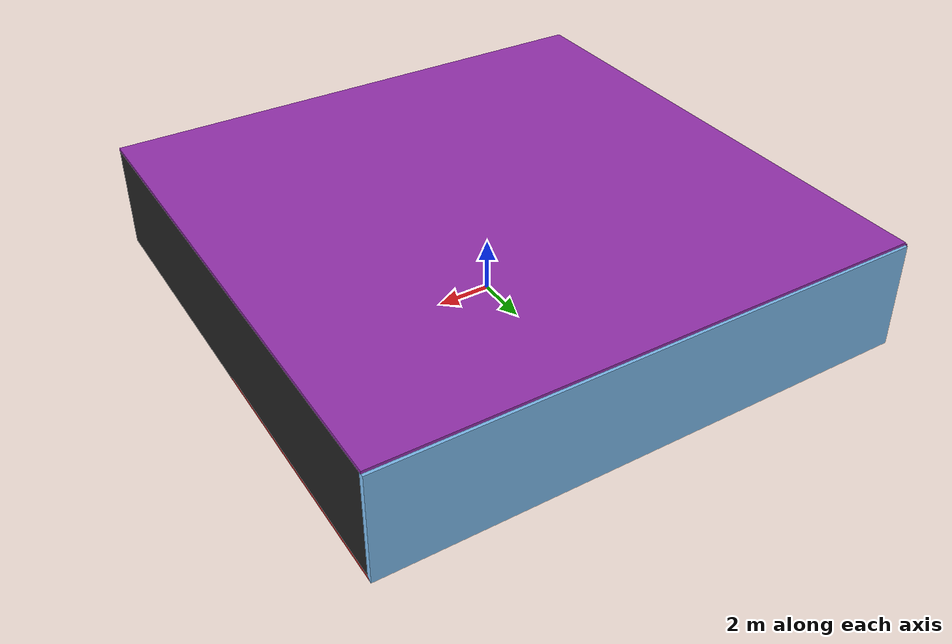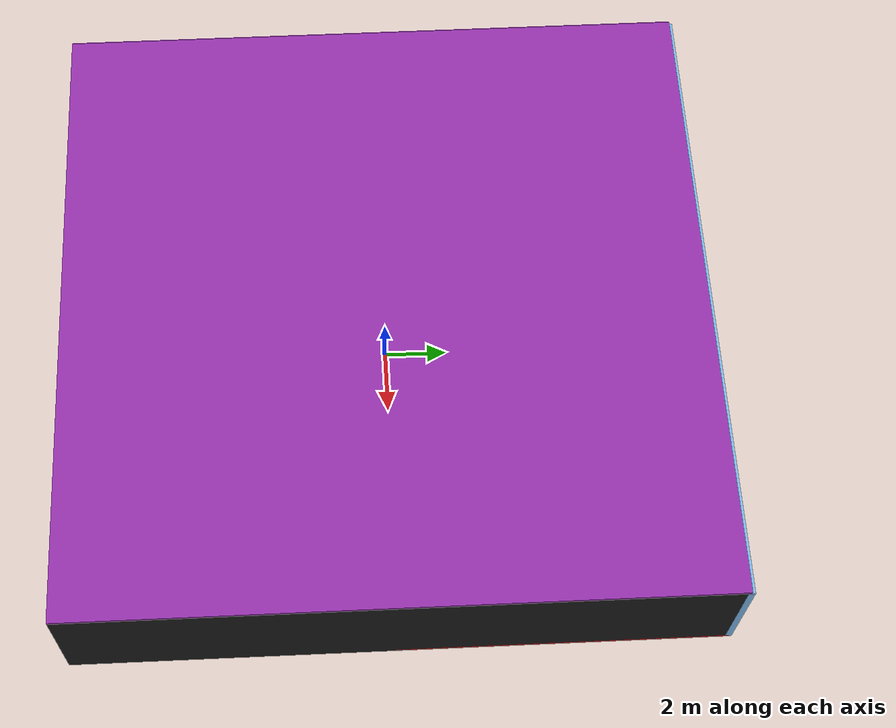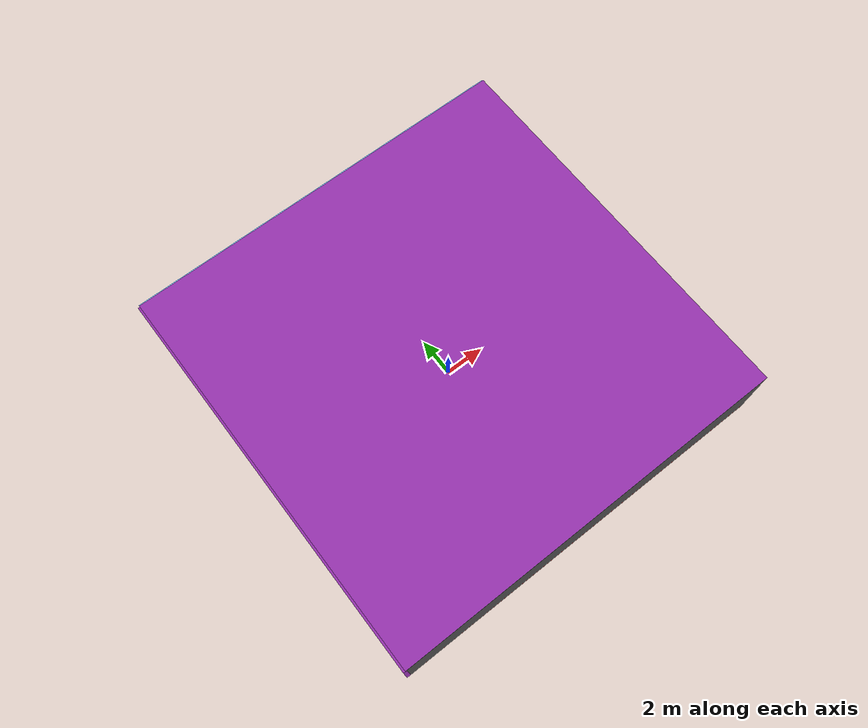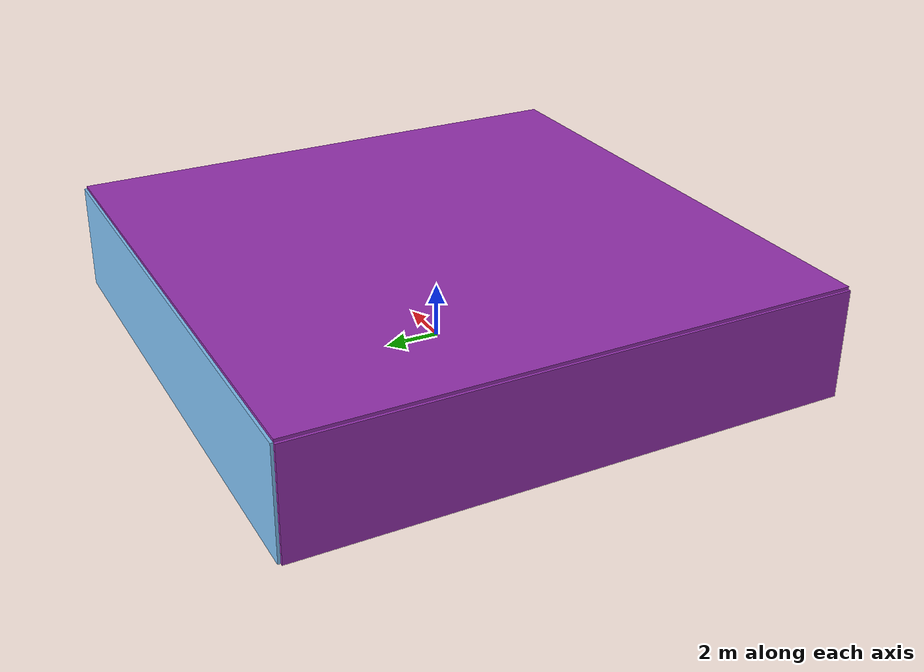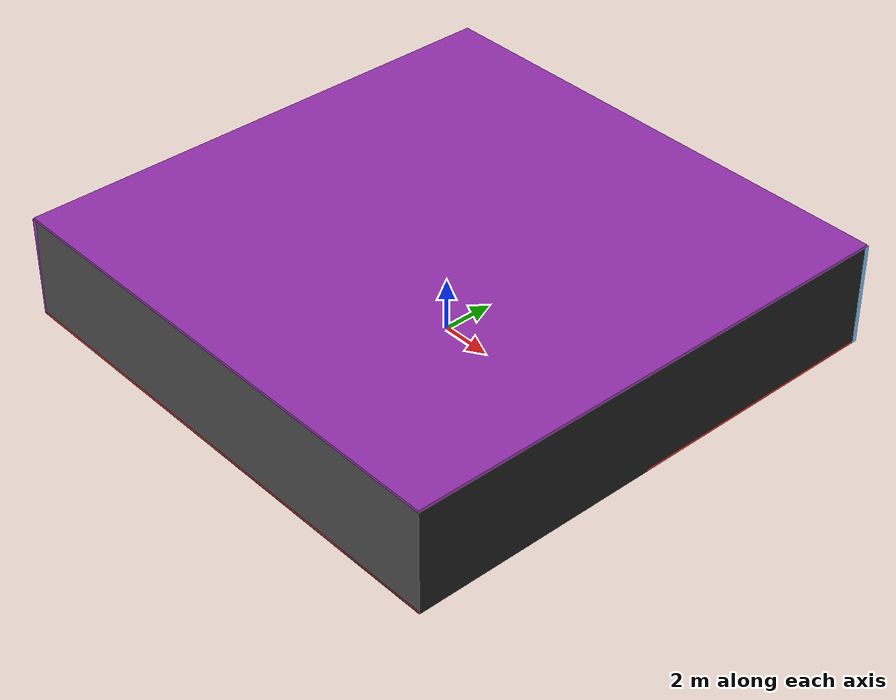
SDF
<sdf version="1.4">
 <world name="default">
  <physics type="ode">
   <max_step_size>0.001</max_step_size>
   <real_time_factor>1</real_time_factor>
   <real_time_update_rate>1000</real_time_update_rate>
   <gravity>0 0 -9.8</gravity>
  </physics>
  <scene><ambient>0.4 0.4 0.4 1</ambient><background>0.7 0.7 0.7 1</background><shadows>1</shadows></scene>
  <model name="Surrounding">
   <static>1</static>
   <link name="Ceiling">
    <collision name="Ceiling_Collision"><geometry><box><size>20 20 0.1</size></box></geometry></collision>
    <visual name="Ceiling_Visual">
     <geometry><box><size>20 20 0.1</size></box></geometry>
     <material>
      <script><uri>file://media/materials/scripts/gazebo.material</uri><name>Gazebo/Purple</name></script>
     </material>
    </visual>
    <pose>0 0 4.05 0 0 0</pose>
   </link>
   <link name="Wall_South">
    <collision name="Wall_South_Collision">
     <geometry><box><size>20 0 4</size></box></geometry>
     <pose>0 0 2 0 -0 0</pose>
    </collision>
    <visual name="Wall_South_Visual">
     <pose>0 0 2 0 -0 0</pose>
     <geometry><box><size>20 0 4</size></box></geometry>
     <material>
      <script><uri>file://media/materials/scripts/gazebo.material</uri><name>Gazebo/DarkGrey</name></script>
     </material>
    </visual>
    <velocity_decay><linear>0</linear><angular>0</angular></velocity_decay>
    <pose>0 -10 0 0 -0 0</pose>
   </link>
   <link name="Wall_East">
    <collision name="Wall_21_Collision">
     <geometry><box><size>20 0 4</size></box></geometry>
     <pose>0 0 2 0 -0 0</pose>
    </collision>
    <visual name="Wall_21_Visual">
     <pose>0 0 2 0 -0 0</pose>
     <geometry><box><size>20 0 4</size></box></geometry>
     <material>
      <script><uri>file://media/materials/scripts/gazebo.material</uri><name>Gazebo/Black</name></script>
     </material>
    </visual>
    <velocity_decay><linear>0</linear><angular>0</angular></velocity_decay>
    <pose>10 0 0 0 -0 1.5708</pose>
   </link>
   <link name="Wall_North">
    <collision name="Wall_22_Collision">
     <geometry><box><size>20 0.2 4</size></box></geometry>
     <pose>0 0 2 0 -0 0</pose>
    </collision>
    <visual name="Wall_22_Visual">
     <pose>0 0 2 0 -0 0</pose>
     <geometry><box><size>20 0.2 4</size></box></geometry>
     <material>
      <script><uri>file://media/materials/scripts/gazebo.material</uri><name>Gazebo/SkyBlue</name></script>
     </material>
    </visual>
    <velocity_decay><linear>0</linear><angular>0</angular></velocity_decay>
    <pose>0 10 0 0 -0 0</pose>
   </link>
   <link name="Wall_West">
    <collision name="Wall_23_Collision">
     <geometry><box><size>20 0.2 4</size></box></geometry>
     <pose>0 0 2 0 -0 0</pose>
    </collision>
    <visual name="Wall_23_Visual">
     <pose>0 0 2 0 -0 0</pose>
     <geometry><box><size>20 0.2 4</size></box></geometry>
     <material>
      <script><uri>file://media/materials/scripts/gazebo.material</uri><name>Gazebo/Purple</name></script>
     </material>
    </visual>
    <velocity_decay><linear>0</linear><angular>0</angular></velocity_decay>
    <pose>-10 0 0 0 0 -1.5708</pose>
   </link>
   <link name="Ground_link">
    <collision name="collision">
     <pose>0 0 .05 0 -0 0</pose>
     <geometry><box><size>20 20 0.1</size></box></geometry>
    </collision>
    <visual name="visual">
     <pose>0 0 .05 0 -0 0</pose>
     <geometry><box><size>20 20 0.1</size></box></geometry>
     <material>
      <script><uri>file://media/materials/scripts/gazebo.material</uri><name>Gazebo/RedGlow</name></script>
     </material>
    </visual>
   </link>
   <static>1</static>
  </model>
  <spherical_coordinates>
   <surface_model>EARTH_WGS84</surface_model>
   <latitude_deg>0</latitude_deg>
   <longitude_deg>0</longitude_deg>
   <elevation>0</elevation>
   <heading_deg>0</heading_deg>
  </spherical_coordinates>
  <light name="lightball_0" type="diffuse">
   <diffuse>0.8 0.8 0.8 1</diffuse>
   <specular>0.2 0.2 0.2 1</specular>
   <attenuation>
    <range>100</range>
    <constant>0.7</constant>
    <linear>0.01</linear>
    <quadratic>0.001</quadratic>
   </attenuation>
   <direction>-0.5 0.1 -0.9</direction>
   <pose>-3.6168230828 5.59605259369 0.850948698784 0 0 0</pose>
  </light>
  <light name="lightball_1" type="diffuse">
   <diffuse>0.8 0.8 0.8 1</diffuse>
   <specular>0.2 0.2 0.2 1</specular>
   <attenuation>
    <range>100</range>
    <constant>0.7</constant>
    <linear>0.01</linear>
    <quadratic>0.001</quadratic>
   </attenuation>
   <direction>-0.5 0.1 -0.9</direction>
   <pose>8.14608541727 9.37235512579 1.24620060569 0 0 0</pose>
  </light>
  <light name="lightball_2" type="diffuse">
   <diffuse>0.8 0.8 0.8 1</diffuse>
   <specular>0.2 0.2 0.2 1</specular>
   <attenuation>
    <range>100</range>
    <constant>0.7</constant>
    <linear>0.01</linear>
    <quadratic>0.001</quadratic>
   </attenuation>
   <direction>-0.5 0.1 -0.9</direction>
   <pose>-1.3723128633 2.56063360392 2.67011088493 0 0 0</pose>
  </light>
  <light name="lightball_3" type="diffuse">
   <diffuse>0.8 0.8 0.8 1</diffuse>
   <specular>0.2 0.2 0.2 1</specular>
   <attenuation>
    <range>100</range>
    <constant>0.7</constant>
    <linear>0.01</linear>
    <quadratic>0.001</quadratic>
   </attenuation>
   <direction>-0.5 0.1 -0.9</direction>
   <pose>5.4554279651 -9.37228942439 1.32973131963 0 0 0</pose>
  </light>
  <light name="lightball_4" type="diffuse">
   <diffuse>0.8 0.8 0.8 1</diffuse>
   <specular>0.2 0.2 0.2 1</specular>
   <attenuation>
    <range>100</range>
    <constant>0.7</constant>
    <linear>0.01</linear>
    <quadratic>0.001</quadratic>
   </attenuation>
   <direction>-0.5 0.1 -0.9</direction>
   <pose>-2.22581880007 5.27288940623 2.8142062787 0 0 0</pose>
  </light>
  <light name="lightball_5" type="diffuse">
   <diffuse>0.8 0.8 0.8 1</diffuse>
   <specular>0.2 0.2 0.2 1</specular>
   <attenuation>
    <range>100</range>
    <constant>0.7</constant>
    <linear>0.01</linear>
    <quadratic>0.001</quadratic>
   </attenuation>
   <direction>-0.5 0.1 -0.9</direction>
   <pose>-2.17481096191 6.36557289389 0.539932495542 0 0 0</pose>
  </light>
  <light name="lightball_6" type="diffuse">
   <diffuse>0.8 0.8 0.8 1</diffuse>
   <specular>0.2 0.2 0.2 1</specular>
   <attenuation>
    <range>100</range>
    <constant>0.7</constant>
    <linear>0.01</linear>
    <quadratic>0.001</quadratic>
   </attenuation>
   <direction>-0.5 0.1 -0.9</direction>
   <pose>0.660976347821 -4.59802245548 1.41451597545 0 0 0</pose>
  </light>
  <light name="lightball_7" type="diffuse">
   <diffuse>0.8 0.8 0.8 1</diffuse>
   <specular>0.2 0.2 0.2 1</specular>
   <attenuation>
    <range>100</range>
    <constant>0.7</constant>
    <linear>0.01</linear>
    <quadratic>0.001</quadratic>
   </attenuation>
   <direction>-0.5 0.1 -0.9</direction>
   <pose>-8.24990528917 2.72529210843 0.857014238208 0 0 0</pose>
  </light>
  <light name="lightball_8" type="diffuse">
   <diffuse>0.8 0.8 0.8 1</diffuse>
   <specular>0.2 0.2 0.2 1</specular>
   <attenuation>
    <range>100</range>
    <constant>0.7</constant>
    <linear>0.01</linear>
    <quadratic>0.001</quadratic>
   </attenuation>
   <direction>-0.5 0.1 -0.9</direction>
   <pose>-4.48887754521 -0.124537392738 3.59548582996 0 0 0</pose>
  </light>
  <include>
   <uri>model://textured_shapes</uri>
   <pose>-7.7796532748 2.46822154114 0 0 0 2.46177640502</pose>
  </include>
  <include>
   <uri>model://robocup_3Dsim_goal</uri>
   <pose>-2.31520309142 -2.1714108913 0 0 0 0.927509460235</pose>
  </include>
  <include>
   <uri>model://construction_cone</uri>
   <pose>2.2386953299 3.64308050815 0 0 0 0.911246487099</pose>
  </include>
  <include><uri>model://cabinet</uri><pose>7.21304046036 -0.445862434796 0 0 0 1.50820817303</pose></include>
 </world>
</sdf>

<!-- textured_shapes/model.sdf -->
<sdf version="1.6">
  <model name="textured_shapes">
    <pose>0 0 0.5 0 0 0</pose>
    <link name="box">
      <pose>0 -1.5 0 0 0 0</pose>
      <collision name="collision">
        <geometry>
          <box>
            <size>1 1 1</size>
          </box>
        </geometry>
      </collision>
      <visual name="visual">
        <geometry>
          <box>
            <size>1 1 1</size>
          </box>
        </geometry>
        <material>
          <script>
            <uri>model://../model_source/models/textured_shapes/materials/scripts</uri>
            <uri>model://../model_source/models/textured_shapes/materials/textures</uri>
            <name>TexturedShape/Squares</name>
          </script>
        </material>
      </visual>
    </link>
    <link name="sphere">
      <collision name="collision">
        <geometry>
          <sphere>
            <radius>0.5</radius>
          </sphere>
        </geometry>
      </collision>
      <visual name="visual">
        <geometry>
          <sphere>
            <radius>0.5</radius>
          </sphere>
        </geometry>
        <material>
          <script>
            <uri>model://../model_source/models/textured_shapes/materials/scripts</uri>
            <uri>model://../model_source/models/textured_shapes/materials/textures</uri>
            <name>TexturedShape/Squares</name>
          </script>
        </material>
      </visual>
    </link>
    <link name="cylinder">
      <pose>0 1.5 0 0 0 0</pose>
      <collision name="collision">
        <geometry>
          <cylinder>
            <radius>0.5</radius>
            <length>1</length>
          </cylinder>
        </geometry>
      </collision>
      <visual name="visual">
        <geometry>
          <cylinder>
            <radius>0.5</radius>
            <length>1</length>
          </cylinder>
        </geometry>
        <material>
          <script>
            <uri>model://../model_source/models/textured_shapes/materials/scripts</uri>
            <uri>model://../model_source/models/textured_shapes/materials/textures</uri>
            <name>TexturedShape/Squares</name>
          </script>
        </material>
      </visual>
    </link>
  </model>
</sdf>

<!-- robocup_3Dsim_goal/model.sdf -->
<sdf version="1.5">
  <model name="robocup_3d_goal">
    <static>true</static>
    <link name="left_post">
      <pose>0 1.05 0.45 0 0 0</pose>
      <collision name="collision">
        <geometry>
          <cylinder>
            <radius>0.05</radius>
            <length>0.9</length>
          </cylinder>
        </geometry>
      </collision>
      <visual name="visual">
        <geometry>
          <cylinder>
            <radius>0.05</radius>
            <length>0.9</length>
          </cylinder>
        </geometry>
        <material>
          <script>
            <uri>file://media/materials/scripts/gazebo.material</uri>
            <name>Gazebo/ZincYellow</name>
          </script>
        </material>
      </visual>
    </link>
    <link name="left_support_horiz_lower">
      <pose>0.30 1.05 0.01 0 0 0</pose>
      <collision name="collision">
        <geometry>
          <box>
            <size>0.50 0.02 0.02</size>
          </box>
        </geometry>
      </collision>
      <visual name="visual">
        <geometry>
          <box>
            <size>0.50 0.02 0.02</size>
          </box>
        </geometry>
        <material>
          <script>
            <uri>file://media/materials/scripts/gazebo.material</uri>
            <name>Gazebo/White</name>
          </script>
        </material>
      </visual>
    </link>
    <link name="left_support_horiz_upper">
      <pose>0.30 1.05 0.79 0 0 0</pose>
      <collision name="collision">
        <geometry>
          <box>
            <size>0.50 0.02 0.02</size>
          </box>
        </geometry>
      </collision>
      <visual name="visual">
        <geometry>
          <box>
            <size>0.50 0.02 0.02</size>
          </box>
        </geometry>
        <material>
          <script>
            <uri>file://media/materials/scripts/gazebo.material</uri>
            <name>Gazebo/White</name>
          </script>
        </material>
      </visual>
    </link>
    <link name="left_support_vertical">
      <pose>0.56 1.05 0.4 0 1.5708 0</pose>
      <collision name="collision">
        <geometry>
          <box>
            <size>0.80 0.02 0.02</size>
          </box>
        </geometry>
      </collision>
      <visual name="visual">
        <geometry>
          <box>
            <size>0.80 0.02 0.02</size>
          </box>
        </geometry>
        <material>
          <script>
            <uri>file://media/materials/scripts/gazebo.material</uri>
            <name>Gazebo/White</name>
          </script>
        </material>
      </visual>
    </link>
    <link name="right_support_horiz_lower">
      <pose>0.30 -1.05 0.01 0 0 0</pose>
      <collision name="collision">
        <geometry>
          <box>
            <size>0.50 0.02 0.02</size>
          </box>
        </geometry>
      </collision>
      <visual name="visual">
        <geometry>
          <box>
            <size>0.50 0.02 0.02</size>
          </box>
        </geometry>
        <material>
          <script>
            <uri>file://media/materials/scripts/gazebo.material</uri>
            <name>Gazebo/White</name>
          </script>
        </material>
      </visual>
    </link>
    <link name="right_support_horiz_upper">
      <pose>0.30 -1.05 0.79 0 0 0</pose>
      <collision name="collision">
        <geometry>
          <box>
            <size>0.50 0.02 0.02</size>
          </box>
        </geometry>
      </collision>
      <visual name="visual">
        <geometry>
          <box>
            <size>0.50 0.02 0.02</size>
          </box>
        </geometry>
        <material>
          <script>
            <uri>file://media/materials/scripts/gazebo.material</uri>
            <name>Gazebo/White</name>
          </script>
        </material>
      </visual>
    </link>
    <link name="right_support_vertical">
      <pose>0.56 -1.05 0.4 0 1.5708 0</pose>
      <collision name="collision">
        <geometry>
          <box>
            <size>0.80 0.02 0.02</size>
          </box>
        </geometry>
      </collision>
      <visual name="visual">
        <geometry>
          <box>
            <size>0.80 0.02 0.02</size>
          </box>
        </geometry>
        <material>
          <script>
            <uri>file://media/materials/scripts/gazebo.material</uri>
            <name>Gazebo/White</name>
          </script>
        </material>
      </visual>
    </link>
    <link name="center_support_horiz_lower">
      <pose>0.56 0 0.01 0 1.5708 0</pose>
      <collision name="collision">
        <geometry>
          <box>
            <size>0.02 2.08 0.02</size>
          </box>
        </geometry>
      </collision>
      <visual name="visual">
        <geometry>
          <box>
            <size>0.02 2.08 0.02</size>
          </box>
        </geometry>
        <material>
          <script>
            <uri>file://media/materials/scripts/gazebo.material</uri>
            <name>Gazebo/White</name>
          </script>
        </material>
      </visual>
    </link>
    <link name="center_support_horiz_upper">
      <pose>0.56 0 0.79 0 1.5708 0</pose>
      <collision name="collision">
        <geometry>
          <box>
            <size>0.02 2.08 0.02</size>
          </box>
        </geometry>
      </collision>
      <visual name="visual">
        <geometry>
          <box>
            <size>0.02 2.08 0.02</size>
          </box>
        </geometry>
        <material>
          <script>
            <uri>file://media/materials/scripts/gazebo.material</uri>
            <name>Gazebo/White</name>
          </script>
        </material>
      </visual>
    </link>
    <link name="right_post">
      <pose>0 -1.05 0.45 0 0 0</pose>
      <collision name="collision">
        <geometry>
          <cylinder>
            <radius>0.05</radius>
            <length>0.9</length>
          </cylinder>
        </geometry>
      </collision>
      <visual name="visual">
        <geometry>
          <cylinder>
            <radius>0.05</radius>
            <length>0.9</length>
          </cylinder>
        </geometry>
        <material>
          <script>
            <uri>file://media/materials/scripts/gazebo.material</uri>
            <name>Gazebo/ZincYellow</name>
          </script>
        </material>
      </visual>
    </link>
    <link name="crossbar">
      <pose>0 0 0.85 1.57 1.57 0</pose>
      <collision name="collision">
        <geometry>
          <cylinder>
            <radius>0.05</radius>
            <length>2.0</length>
          </cylinder>
        </geometry>
      </collision>
      <visual name="visual">
        <geometry>
          <cylinder>
            <radius>0.05</radius>
            <length>2.0</length>
          </cylinder>
        </geometry>
        <material>
          <script>
            <uri>file://media/materials/scripts/gazebo.material</uri>
            <name>Gazebo/ZincYellow</name>
          </script>
        </material>
      </visual>
    </link>
    <link name="center_net">
      <pose>0.56 0 0.40 0 0 0</pose>
      <collision name="collision">
        <geometry>
          <box>
            <size>0.01 2.1 0.80</size>
          </box>
        </geometry>
      </collision>
      <visual name="visual">
        <geometry>
          <box>
            <size>0.01 2.1 0.80</size>
          </box>
        </geometry>
        <material>
          <script>
            <uri>model://../model_source/models/robocup09_spl_field/materials/scripts/</uri>
            <uri>model://../model_source/models/robocup09_spl_field/materials/textures/</uri>
            <name>RoboCup/Net</name>
          </script>
        </material>
      </visual>
    </link>
    <link name="left_net">
      <pose>0.30 1.05 0.40 0 0 0</pose>
      <collision name="collision">
        <geometry>
          <box>
            <size>0.50 0.01 0.76</size>
          </box>
        </geometry>
      </collision>
      <visual name="visual">
        <geometry>
          <box>
            <size>0.50 0.01 0.76</size>
          </box>
        </geometry>
        <material>
          <script>
            <uri>model://../model_source/models/robocup09_spl_field/materials/scripts/</uri>
            <uri>model://../model_source/models/robocup09_spl_field/materials/textures/</uri>
            <name>RoboCup/Net</name>
          </script>
        </material>
      </visual>
    </link>
    <link name="right_net">
      <pose>0.30 -1.05 0.40 0 0 0</pose>
      <collision name="collision">
        <geometry>
          <box>
            <size>0.50 0.01 0.76</size>
          </box>
        </geometry>
      </collision>
      <visual name="visual">
        <geometry>
          <box>
            <size>0.50 0.01 0.76</size>
          </box>
        </geometry>
        <material>
          <script>
            <uri>model://../model_source/models/robocup09_spl_field/materials/scripts/</uri>
            <uri>model://../model_source/models/robocup09_spl_field/materials/textures/</uri>
            <name>RoboCup/Net</name>
          </script>
        </material>
      </visual>
    </link>
  </model>
</sdf>

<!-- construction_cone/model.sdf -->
<sdf version="1.5">
  <model name="Construction Cone">
    <link name="link">
      <collision name="collision">
        <geometry>
          <mesh>
            <scale>10 10 10</scale>
            <uri>file://isr-testbed/construction_cone/meshes/construction_cone.dae</uri>
          </mesh>
        </geometry>
      </collision>
      <visual name="visual">
        <geometry>
          <mesh>
            <scale>10 10 10</scale>
            <uri>file://isr-testbed/construction_cone/meshes/construction_cone.dae</uri>
          </mesh>
        </geometry>
      </visual>
    </link>
  </model>
</sdf>

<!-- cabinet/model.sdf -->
<sdf version="1.5">
  <model name="cabinet">
    <static>true</static>
    <link name="cabinet_bottom_plate">
      <inertial>
        <pose>0 0 -1 0 0 0</pose>
        <inertia>
          <ixx>2.050000</ixx>
          <ixy>0</ixy>
          <ixz>0</ixz>
          <iyy>2.050000</iyy>
          <iyz>0</iyz>
          <izz>2.050000</izz>
        </inertia>
        <mass>25.000000</mass>
      </inertial>
      <collision name="cabinet_bottom_plate_geom">
        <pose>0 0 0.010000 0 0 0</pose>
        <geometry>
          <box>
            <size>0.450000 0.450000 0.020000</size>
          </box>
        </geometry>
      </collision>
      <visual name="cabinet_bottom_plate_geom_visual">
        <pose>0 0 0.010000 0 0 0</pose>
        <geometry>
          <box>
            <size>0.450000 0.450000 0.020000</size>
          </box>
        </geometry>
        <material>
          <script>
            <uri>model://media/materials/scripts/gazebo.material</uri>
            <name>Gazebo/Wood</name>
          </script>
        </material>
      </visual>
      <collision name="cabinet_bottom_plate_geom_cabinet_back_plate">
        <pose>0.235000 0 0.510000 0 0 0</pose>
        <geometry>
          <box>
            <size>0.020000 0.450000 1.020000</size>
          </box>
        </geometry>
      </collision>
      <visual name="cabinet_bottom_plate_geom_cabinet_back_plate_visual">
        <pose>0.235000 0 0.510000 0 0 0</pose>
        <geometry>
          <box>
            <size>0.020000 0.450000 1.020000</size>
          </box>
        </geometry>
        <material>
          <script>
            <uri>model://media/materials/scripts/gazebo.material</uri>
            <name>Gazebo/Wood</name>
          </script>
        </material>
      </visual>
      <collision name="cabinet_bottom_plate_geom_cabinet_left_plate">
        <pose>0 0.235000 0.510000 0 0 0</pose>
        <geometry>
          <box>
            <size>0.450000 0.020000 1.020000</size>
          </box>
        </geometry>
      </collision>
      <visual name="cabinet_bottom_plate_geom_cabinet_left_plate_visual">
        <pose>0 0.235000 0.510000 0 0 0</pose>
        <geometry>
          <box>
            <size>0.450000 0.020000 1.020000</size>
          </box>
        </geometry>
        <material>
          <script>
            <uri>model://media/materials/scripts/gazebo.material</uri>
            <name>Gazebo/Wood</name>
          </script>
        </material>
      </visual>
      <collision name="cabinet_bottom_plate_geom_cabinet_middle_plate">
        <pose>0 0 0.510000 0 0 0</pose>
        <geometry>
          <box>
            <size>0.450000 0.450000 0.020000</size>
          </box>
        </geometry>
      </collision>
      <visual name="cabinet_bottom_plate_geom_cabinet_middle_plate_visual">
        <pose>0 0 0.510000 0 0 0</pose>
        <geometry>
          <box>
            <size>0.450000 0.450000 0.020000</size>
          </box>
        </geometry>
        <material>
          <script>
            <uri>model://media/materials/scripts/gazebo.material</uri>
            <name>Gazebo/Wood</name>
          </script>
        </material>
      </visual>
      <collision name="cabinet_bottom_plate_geom_cabinet_right_plate">
        <pose>0 -0.235000 0.510000 0 0 0</pose>
        <geometry>
          <box>
            <size>0.450000 0.020000 1.020000</size>
          </box>
        </geometry>
      </collision>
      <visual name="cabinet_bottom_plate_geom_cabinet_right_plate_visual">
        <pose>0 -0.235000 0.510000 0 0 0</pose>
        <geometry>
          <box>
            <size>0.450000 0.020000 1.020000</size>
          </box>
        </geometry>
        <material>
          <script>
            <uri>model://media/materials/scripts/gazebo.material</uri>
            <name>Gazebo/Wood</name>
          </script>
        </material>
      </visual>
      <collision name="cabinet_bottom_plate_geom_cabinet_top_plate">
        <pose>0 0 1.010000 0 0 0</pose>
        <geometry>
          <box>
            <size>0.450000 0.450000 0.020000</size>
          </box>
        </geometry>
      </collision>
      <visual name="cabinet_bottom_plate_geom_cabinet_top_plate_visual">
        <pose>0 0 1.010000 0 0 0</pose>
        <geometry>
          <box>
            <size>0.450000 0.450000 0.020000</size>
          </box>
        </geometry>
        <material>
          <script>
            <uri>model://media/materials/scripts/gazebo.material</uri>
            <name>Gazebo/Wood</name>
          </script>
        </material>
      </visual>
    </link>
  </model>
</sdf>
